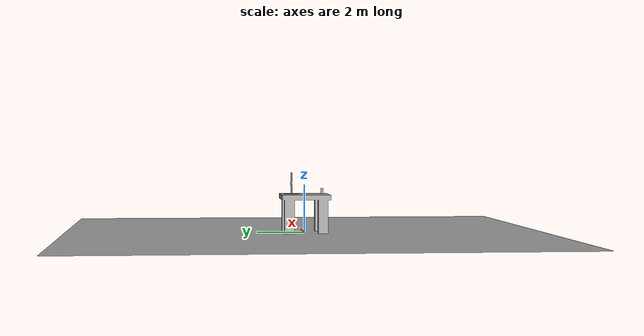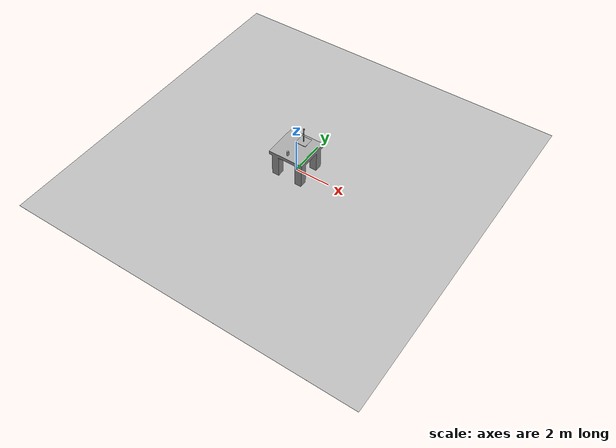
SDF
<?xml version="1.0"?>
<!-- created with Phobos 1.0.1 "Capricious Choutengan" -->
<sdf version="1.5">
  <model name="test_scene">
    <link name="root">
      <pose>0 0 0 0 0 0</pose>
      <inertial>
        <mass>100000.0</mass>
        <inertia>
          <ixx>3333333.25</ixx>
          <ixy>0</ixy>
          <ixz>0</ixz>
          <iyy>3333333.25</iyy>
          <iyz>0</iyz>
          <izz>6666666.5</izz>
        </inertia>
        <pose>0 0 0 0 0 0</pose>
      </inertial>
      <collision name="Ground">
        <pose>0 0 0 0 0 0</pose>
        <geometry>
          <box>
            <size>20.0 20.0 0.0002</size>
          </box>
        </geometry>
      </collision>
      <visual name="Ground">
        <pose>0.0 0.0 0.0 0.0 -0.0 0.0</pose>
        <geometry>
          <box>
            <size>20.0 20.0 0.0002</size>
          </box>
        </geometry>
      </visual>
    </link>
    <link name="arm_1_link">
      <pose>0.0656 0.55642 2.08328 1.5708 0 0</pose>
      <inertial>
        <mass>0.12</mass>
        <inertia>
          <ixx>0.00163</ixx>
          <ixy>0</ixy>
          <ixz>0</ixz>
          <iyy>5e-05</iyy>
          <iyz>0</iyz>
          <izz>0.00163</izz>
        </inertia>
        <pose>0 0.19559 4e-05 0 0 0</pose>
      </inertial>
      <collision name="Arm section 1">
        <pose>0 0.21507 0.00053 1.5708 0 0</pose>
        <geometry>
          <cylinder>
            <radius>0.03</radius>
            <length>0.4</length>
          </cylinder>
        </geometry>
      </collision>
      <visual name="Arm section 1">
        <pose>0.0 0.21481657028198242 0.0007593631744384766 1.5707963705062866 -1.6297065693476886e-12 0.0</pose>
        <material>
          <ambient>0.64 0.64 0.64 1.0</ambient>
          <diffuse>0.64 0.64 0.64 1.0</diffuse>
          <specular>0.5 0.5 0.5 1.0</specular>
        </material>
        <geometry>
          <cylinder>
            <radius>0.03</radius>
            <length>0.4</length>
          </cylinder>
        </geometry>
      </visual>
    </link>
    <link name="arm_base_link.000">
      <pose>0.0656 0.55642 1.6248 0 0 0</pose>
      <inertial>
        <mass>0.45</mass>
        <inertia>
          <ixx>0.05497</ixx>
          <ixy>0</ixy>
          <ixz>0</ixz>
          <iyy>0.05497</iyy>
          <iyz>0</iyz>
          <izz>0.01668</izz>
        </inertia>
        <pose>0 0 0.4195 0 0 0</pose>
      </inertial>
      <collision name="Arm base.000">
        <pose>0 0 0.4195 0 0 0</pose>
        <geometry>
          <mesh>
            <uri>model://test_scene/meshes/Sphere.001.dae</uri>
            <scale>1.0 1.0 1.0</scale>
          </mesh>
        </geometry>
      </collision>
      <visual name="Arm base">
        <pose>0.0 1.1920928955078125e-07 0.41950464248657227 0.0 -0.0 0.0</pose>
        <material>
          <ambient>0.64 0.64 0.64 1.0</ambient>
          <diffuse>0.64 0.64 0.64 1.0</diffuse>
          <specular>0.5 0.5 0.5 1.0</specular>
        </material>
        <geometry>
          <mesh>
            <uri>model://test_scene/meshes/Sphere.dae</uri>
            <scale>1.0 1.0 1.0</scale>
          </mesh>
        </geometry>
      </visual>
    </link>
    <link name="table_link">
      <pose>0 0 1.5 0 0 0</pose>
      <inertial>
        <mass>68.0</mass>
        <inertia>
          <ixx>50.28507</ixx>
          <ixy>0</ixy>
          <ixz>0</ixz>
          <iyy>50.28507</iyy>
          <iyz>0</iyz>
          <izz>44.98273</izz>
        </inertia>
        <pose>0 0 0 0 0 0</pose>
      </inertial>
      <collision name="1m Table.000">
        <pose>0 0 0 0 0 0</pose>
        <geometry>
          <mesh>
            <uri>model://test_scene/meshes/Cube.002.dae</uri>
            <scale>1.0 1.0 1.0</scale>
          </mesh>
        </geometry>
      </collision>
      <visual name="1m Table">
        <pose>0.0 0.0 0.0 0.0 -0.0 0.0</pose>
        <material>
          <ambient>0.64 0.64 0.64 1.0</ambient>
          <diffuse>0.64 0.64 0.64 1.0</diffuse>
          <specular>0.5 0.5 0.5 1.0</specular>
        </material>
        <geometry>
          <mesh>
            <uri>model://test_scene/meshes/1m Table.dae</uri>
            <scale>1.0 1.0 1.0</scale>
          </mesh>
        </geometry>
      </visual>
    </link>
    <link name="soda_can_link">
      <pose>-0.03638 -0.72384 1.73349 0 0 0</pose>
      <inertial>
        <mass>0.04</mass>
        <inertia>
          <ixx>0.00023</ixx>
          <ixy>0</ixy>
          <ixz>0</ixz>
          <iyy>0.00023</iyy>
          <iyz>0</iyz>
          <izz>7e-05</izz>
        </inertia>
        <pose>0 0 0 0 0 0</pose>
      </inertial>
      <collision name="Soda Can">
        <pose>0 0 0 0 0 0</pose>
        <geometry>
          <cylinder>
            <radius>0.06</radius>
            <length>0.24</length>
          </cylinder>
        </geometry>
      </collision>
      <visual name="Soda Can">
        <pose>0.0 0.0 0.0 0.0 -0.0 0.0</pose>
        <material>
          <ambient>0.64 0.64 0.64 1.0</ambient>
          <diffuse>0.64 0.64 0.64 1.0</diffuse>
          <specular>0.5 0.5 0.5 1.0</specular>
        </material>
        <geometry>
          <mesh>
            <uri>model://test_scene/meshes/Cylinder.dae</uri>
            <scale>1.0 1.0 1.0</scale>
          </mesh>
        </geometry>
      </visual>
    </link>
    <joint type="revolute" name="arm_1_link">
      <parent>arm_base_link.000</parent>
      <child>arm_1_link</child>
      <pose>0.0 0.0 0.0 0.0 0.0 0.0</pose>
      <axis>
        <xyz>0 0 1.0</xyz>
        <limit>
          <lower>-0.4</lower>
          <upper>0.4</upper>
          <effort>0</effort>
          <velocity>0</velocity>
        </limit>
      </axis>
    </joint>
    <joint type="TODO" name="table_link">
      <parent>root</parent>
      <child>table_link</child>
      <pose>0.0 0.0 0.0 0.0 0.0 0.0</pose>
    </joint>
    <joint type="TODO" name="arm_base_link.000.000">
      <parent>root</parent>
      <child>arm_base_link.000</child>
      <pose>0.0 0.0 0.0 0.0 0.0 0.0</pose>
    </joint>
    <joint type="TODO" name="soda_can_link">
      <parent>root</parent>
      <child>soda_can_link</child>
      <pose>0.0 0.0 0.0 0.0 0.0 0.0</pose>
    </joint>
  </model>
</sdf>
